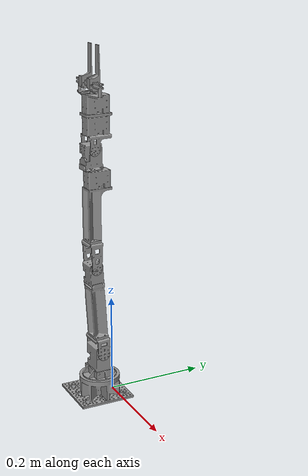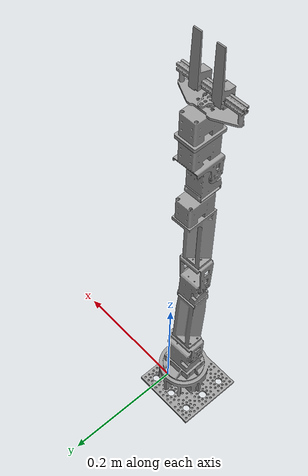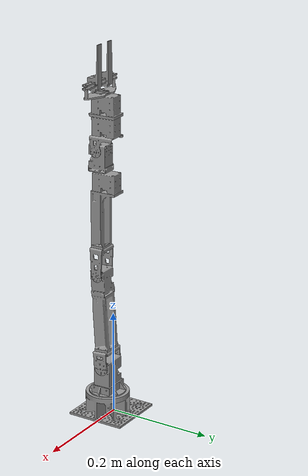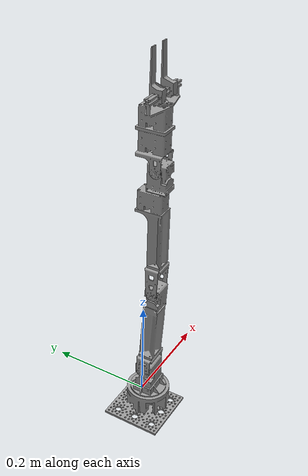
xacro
<?xml version="1.0"?>
<!-- Open_Manipulator Chain -->
<robot name="assem_urdf10_description" xmlns:xacro="http://ros.org/wiki/xacro">

  <!-- Import all Gazebo-customization elements, including Gazebo colors -->
  <xacro:include filename="$(find assem_urdf10_description)/urdf/assem_urdf10_good_mod.gazebo.xacro"/>
  <!-- Import Rviz colors -->
  <xacro:include filename="$(find assem_urdf10_description)/urdf/materials.xacro" />

  <!-- World -->
  <link name="world">
  </link>

  <!-- World fixed joint -->
  <joint name="world_fixed" type="fixed">
    <origin xyz="0 0 0" rpy="0 0 0"/>
    <parent link="world"/>
    <child link="base_link"/>
  </joint>

  <!-- Base Link -->
  <link name="base_link">
	<inertial>
      <origin xyz="-0.0198091676921037 0.00475895888627786 0.0223348947769206" rpy="0 0 0" />
      <mass value="0.152427750768752" />
      <inertia
        ixx="2.87194132562496E-05"
        ixy="-1.00279818908323E-05"
        ixz="-2.09508757427431E-08"
        iyy="7.78197054288688E-06"
        iyz="-6.99543710236704E-08"
        izz="3.51911780883504E-05" />
    </inertial>
	<visual>
      <origin xyz="0 0 0" rpy="0 0 0"/>
		<geometry>
        	<mesh filename="package://assem_urdf10_description/meshes/base_link.STL"/>
		</geometry>
		<material name="grey"/>
	</visual>
	<collision>
      <origin
        xyz="0 0 0"
        rpy="0 0 0" />
      <geometry>
        <mesh
          filename="package://assem_urdf10_description/meshes/base_link.STL" />
      </geometry>
    </collision>
  </link>

  <!-- World fixed joint -->

  <!-- Link 1 -->
  <link name="link1">
    <visual>
      <origin xyz="0 0 0" rpy="0 0 0"/>
      <geometry>
        <mesh filename="package://assem_urdf10_description/meshes/link1.STL"/>
      </geometry>
      <material name="grey"/>
    </visual>

    <collision>
      <origin xyz="0 0 0" rpy="0 0 0"/>
      <geometry>
        <mesh filename="package://assem_urdf10_description/meshes/link1.STL"/>
      </geometry>
    </collision>

	<inertial>
      <origin
        xyz="0.000278221314922764 0.0385027065938655 0.00027822088980917"
        rpy="0 0 0" />
      <mass
        value="0.11236533985333" />
      <inertia
        ixx="0.00010158087504"
        ixy="0.0"
        ixz="0.0"
        iyy="9.13460097036e-05"
        iyz="0.0"
        izz="0.00010158087504" />
    </inertial>
  </link>

  <!-- Joint 1 -->
  <joint name="id_1" type="revolute">
    <parent link="base_link"/>
    <child link="link1"/>
    <origin xyz="-0.0136208916068772 -0.0223589880134227 0.0216594248998582"
      rpy="1.5707963267949 4.47651619176839E-17 0.819925085155917" />
    <axis xyz="0 1 0"/>
    <limit velocity="1" effort="100" lower="${-pi*1.1}" upper="${pi*0.9}" />
  </joint>

  <!--  Link 2 -->
  <link name="link2">

	<visual>
      <origin xyz="0 0 0" rpy="0 0 0"/>
      <geometry>
        <mesh filename="package://assem_urdf10_description/meshes/link2.STL"/>
      </geometry>
      <material name="grey"/>
    </visual>

    <collision>
      <origin xyz="0 0 0" rpy="0 0 0"/>
      <geometry>
        <mesh filename="package://assem_urdf10_description/meshes/link2.STL"/>
      </geometry>
    </collision>

    <inertial>
      <origin xyz="7.91954423880192E-08 -0.000206940804577149 -0.11551164553495"
        rpy="0 0 0" />
      <mass value="1.0" />
      <inertia ixx="0.00383252520833"
        ixy="0.0"
        ixz="0.0"
        iyy="0.00368200520833"
        iyz="0.0"
        izz="0.000321186666667" />
    </inertial>
  </link>

  <!--  Joint 2 -->
  <joint name="id_2" type="revolute">
    <parent link="link1"/>
    <child link="link2"/>
    <origin xyz="0 0.0635250000000307 0" rpy="-1.63071272414614 -0.783598867449766 -3.05680721740956" />
    <axis xyz="0 -1 0"/>
    <limit velocity="1" effort="100" lower="-2.0" upper="2.0" />
  </joint>

  <!--  Link 3 -->
  <link name="link3">

    <visual>
      <origin xyz="0 0 0" rpy="0 0 0"/>
      <geometry>
        <mesh filename="package://assem_urdf10_description/meshes/link3.STL"/>
      </geometry>
      <material name="grey"/>
    </visual>

    <collision>
      <origin xyz="0 0 0" rpy="0 0 0"/>
      <geometry>
        <mesh filename="package://assem_urdf10_description/meshes/link3.STL"/>
      </geometry>
    </collision>

    <inertial>
      <origin xyz="-0.00664293841766437 1.58910654600442E-09 -0.13681867944283"
        rpy="0 0 0" />
      <mass value="0.0942669059876105" />
      <inertia
        ixx="0.000361432593479"
        ixy="0.0"
        ixz="0.0"
        iyy="0.000368082809473"
        iyz="0.0"
        izz="3.66536439437e-05" />
    </inertial>
  </link>

  <!--  Joint 3 -->
  <joint name="id_3" type="revolute">
    <parent link="link2"/>
    <child link="link3"/>
    <origin xyz="0 0 -0.1825"
      rpy="9.29069784347397E-16 0.0554201788363836 -7.65146952831404E-15" />
    <axis xyz="0 -1 0"/>
    <limit velocity="1" effort="100" lower="-2.5" upper="2.5" />
  </joint>

  <!--  Link 4 -->
  <link name="link4">
    <visual>
      <origin xyz="0 0 0" rpy="0 0 0"/>
      <geometry>
        <mesh filename="package://assem_urdf10_description/meshes/link4.STL"/>
      </geometry>
      <material name="grey"/>
    </visual>

    <collision>
      <origin xyz="0 0 0" rpy="0 0 0"/>
      <geometry>
        <mesh filename="package://assem_urdf10_description/meshes/link4.STL"/>
      </geometry>
    </collision>

    <inertial>
      <origin xyz="-0.000469459815869877 0.0298275386935002 2.34661512443779E-09"
        rpy="0 0 0" />
      <mass value="0.0437656445694864" />
      <inertia
        ixx="1.38949083126e-05"
        ixy="0.0"
        ixz="0.0"
        iyy="7.95531768477e-06"
        iyz="0.0"
        izz="1.59254518638e-05" />
    </inertial>

  </link>

  <!--  Joint 4 -->
  <joint name="id_4" type="revolute">
    <parent link="link3"/>
    <child link="link4"/>
    <origin xyz="-0.000499999999997371 0 -0.197871283222506"
      rpy="-1.57 0.0 0" />
    <axis xyz="0 1 0"/>
    <limit velocity="1.0" effort="100.0" lower="${-pi}" upper="${pi}" />
  </joint>

  <!--  Link 5 -->
  <link name="link5">
    <visual>
      <origin xyz="0 0 0" rpy="0 0 0"/>
      <geometry>
        <mesh filename="package://assem_urdf10_description/meshes/link5.STL"/>
      </geometry>
      <material name="grey"/>
    </visual>

    <collision>
      <origin xyz="0 0 0" rpy="0 0 0"/>
      <geometry>
        <mesh filename="package://assem_urdf10_description/meshes/link5.STL"/>
      </geometry>
    </collision>

    <inertial>
      <origin yz="-0.0113709297401874 3.1790882773497E-09 -0.0418298886384917"
        rpy="0 0 0" />
      <mass value="0.046790034353077" />
      <inertia
        ixx="2.82248794809e-05"
        ixy="0.0"
        ixz="0.0"
        iyy="2.92096537373e-05"
        iyz="0.0"
        izz="1.58771843736e-05" />
    </inertial>
  </link>

  <!--  Joint 5 -->
  <joint name="id_5" type="revolute">
    <parent link="link4"/>
    <child link="link5"/>
    <origin xyz="0 0.043629 0"
      rpy="1.57 0 0" />
    <axis xyz="0 1 0"/>
    <limit velocity="1" effort="100" lower="${-pi*.5}" upper="${2.2}" />
  </joint>

  <link name="link6">
    <inertial>
      <origin
        xyz="6.04487289442707E-08 0.0271430423844783 0.0102971530069109"
        rpy="0 0 0" />
      <mass
        value="0.0609796041332711" />
      <inertia
        ixx="3.87743233699e-05"
        ixy="0.0"
        ixz="0.0"
        iyy="6.51791215741e-05"
        iyz="0.0"
        izz="7.52278753513e-05" />
    </inertial>
    <visual>
      <origin
        xyz="0 0 0"
        rpy="0 0 0" />
      <geometry>
        <mesh filename="package://assem_urdf10_description/meshes/link6.STL" />
      </geometry>
      <material name="grey" />
    </visual>
    <collision>
      <origin xyz="0 0 0" rpy="0 0 0" />
      <geometry>
        <mesh filename="package://assem_urdf10_description/meshes/link6.STL" />
      </geometry>
    </collision>
  </link>

  <joint name="id_6" type="revolute">
    <origin xyz="0 0 -0.061455"
      rpy="-1.5708 3.9642E-15 1.5869" />
    <parent link="link5" />
    <child link="link6" />
    <axis xyz="0 1 0" />
	<limit velocity="1" effort="100" lower="${-pi}" upper="${pi}" />
  </joint>

<link name="link7">
    <inertial>
      <origin
        xyz="8.04777473828455E-10 0.00431553027636999 -2.19556255485337E-08"
        rpy="0 0 0" />
      <mass
        value="0.00209578541384519" />
      <inertia
        ixx="9.65036529181e-08"
        ixy="0.0"
        ixz="0.0"
        iyy="3.16097982311e-07"
        iyz="0.0"
        izz="2.43541611846e-07" />
    </inertial>
    <visual>
      <origin
        xyz="0 0 0"
        rpy="0 0 0" />
      <geometry>
        <mesh
          filename="package://assem_urdf10_description/meshes/link7.STL" />
      </geometry>
      <material name="grey" />
    </visual>
    <collision>
      <origin
        xyz="0 0 0"
        rpy="0 0 0" />
      <geometry>
        <mesh
          filename="package://assem_urdf10_description/meshes/link7.STL" />
      </geometry>
    </collision>
  </link>

  <joint name="joint7" type="fixed">
    <origin xyz="0 0.040666 0.00025" rpy="-1.8471E-13 1.5595 -1.844E-13" />
    <parent link="link6" />
    <child link="link7" />
  </joint>

  <link name="grip_link">
    <visual>
      <origin xyz="0 0 0" rpy="0 0 0"/>
      <geometry>
        <mesh filename="package://assem_urdf10_description/meshes/grip_link.STL"/>
      </geometry>
      <material name="grey"/>
    </visual>

    <collision>
      <origin xyz="0 0 0" rpy="0 0 0"/>
      <geometry>
        <mesh filename="package://assem_urdf10_description/meshes/grip_link.STL" />
      </geometry>
    </collision>

    <inertial>
      <origin xyz="-0.0131288466598847 0.0330730472446744 0.00290325109046016" rpy="0 0 0" />
      <mass value="0.00686258582199906" />
      <inertia
		ixx="3.71546115225e-07"
        ixy="0.0"
        ixz="0.0"
        iyy="4.27067436906e-06"
        iyz="0.0"
        izz="4.12330605735e-06" />
    </inertial>
  </link>

  <joint name="grip_joint" type="prismatic">
    <parent link="link7"/>
    <child link="grip_link"/>
    <origin xyz="-0.00017269 0.023188 -0.015347"
      rpy="1.5595 2.2343E-15 -1.5708" />
    <axis xyz="0 -1 0"/>
    <limit velocity="0.01" effort="0.1" lower="-0.015" upper="0.0105" />
  </joint>

  <link name="grip_link_sub">
    <visual>
      <origin xyz="0 -0 0" rpy="0 0 0"/>
      <geometry>
        <mesh filename="package://assem_urdf10_description/meshes/grip_link_sub.STL"/>
      </geometry>
      <material name="grey"/>
    </visual>

    <collision>
      <origin xyz="0 -0 0" rpy="0 0 0"/>
      <geometry>
        <mesh filename="package://assem_urdf10_description/meshes/grip_link_sub.STL"/>
      </geometry>
    </collision>

    <inertial>
      <origin xyz="-0.0131288455395543 0.00692695270900137 0.00290325169007665"
        rpy="0 0 0" />
      <mass value="0.00686258582199906" />
      <inertia
		ixx="3.71546115225e-07"
        ixy="0.0"
        ixz="0.0"
        iyy="4.27067436906e-06"
        iyz="0.0"
        izz="4.12330605735e-06" />
    </inertial>
  </link>

  <joint name="grip_joint_sub" type="prismatic">
    <parent link="link7"/>
    <child link="grip_link_sub"/>
    <origin xyz="-0.00027737 0.023288 -0.02465"
      rpy="1.5595 1.5292E-15 -1.5708" />
    <axis xyz="0 1 0"/>
    <limit velocity="0.01" effort="0.1" lower="-0.015" upper="0.0105" />
  </joint>

  <transmission name="tran1">
    <type>transmission_interface/SimpleTransmission</type>
    <joint name="id_1">
      <hardwareInterface>hardware_interface/PositionJointInterface</hardwareInterface>
    </joint>
    <actuator name="motor1">
      <hardwareInterface>hardware_interface/PositionJointInterface</hardwareInterface>
      <mechanicalReduction>1</mechanicalReduction>
    </actuator>
  </transmission>

  <transmission name="tran2">
    <type>transmission_interface/SimpleTransmission</type>
    <joint name="id_2">
      <hardwareInterface>hardware_interface/PositionJointInterface</hardwareInterface>
    </joint>
    <actuator name="motor2">
      <hardwareInterface>hardware_interface/PositionJointInterface</hardwareInterface>
      <mechanicalReduction>1</mechanicalReduction>
    </actuator>
  </transmission>

  <transmission name="tran3">
    <type>transmission_interface/SimpleTransmission</type>
    <joint name="id_3">
      <hardwareInterface>hardware_interface/PositionJointInterface</hardwareInterface>
    </joint>
    <actuator name="motor3">
      <hardwareInterface>hardware_interface/PositionJointInterface</hardwareInterface>
      <mechanicalReduction>1</mechanicalReduction>
    </actuator>
  </transmission>

  <transmission name="tran4">
    <type>transmission_interface/SimpleTransmission</type>
    <joint name="id_4">
      <hardwareInterface>hardware_interface/PositionJointInterface</hardwareInterface>
    </joint>
    <actuator name="motor4">
      <hardwareInterface>hardware_interface/PositionJointInterface</hardwareInterface>
      <mechanicalReduction>1</mechanicalReduction>
    </actuator>
  </transmission>

  <transmission name="tran5">
    <type>transmission_interface/SimpleTransmission</type>
    <joint name="id_5">
      <hardwareInterface>hardware_interface/PositionJointInterface</hardwareInterface>
    </joint>
    <actuator name="motor5">
      <hardwareInterface>hardware_interface/PositionJointInterface</hardwareInterface>
      <mechanicalReduction>1</mechanicalReduction>
    </actuator>
  </transmission>

  <transmission name="tran6">
    <type>transmission_interface/SimpleTransmission</type>
    <joint name="id_6">
      <hardwareInterface>hardware_interface/PositionJointInterface</hardwareInterface>
    </joint>
    <actuator name="motor6">
      <hardwareInterface>hardware_interface/PositionJointInterface</hardwareInterface>
      <mechanicalReduction>1</mechanicalReduction>
    </actuator>
  </transmission>

  <transmission name="tran7">
    <type>transmission_interface/SimpleTransmission</type>
    <joint name="grip_joint">
      <hardwareInterface>hardware_interface/PositionJointInterface</hardwareInterface>
    </joint>
    <actuator name="motor7">
      <hardwareInterface>hardware_interface/PositionJointInterface</hardwareInterface>
      <mechanicalReduction>1</mechanicalReduction>
    </actuator>
  </transmission>

  <transmission name="tran8">
    <type>transmission_interface/SimpleTransmission</type>
    <joint name="grip_joint_sub">
      <hardwareInterface>hardware_interface/PositionJointInterface</hardwareInterface>
    </joint>
    <actuator name="motor8">
      <hardwareInterface>hardware_interface/PositionJointInterface</hardwareInterface>
      <mechanicalReduction>1</mechanicalReduction>
    </actuator>
  </transmission>

</robot>
